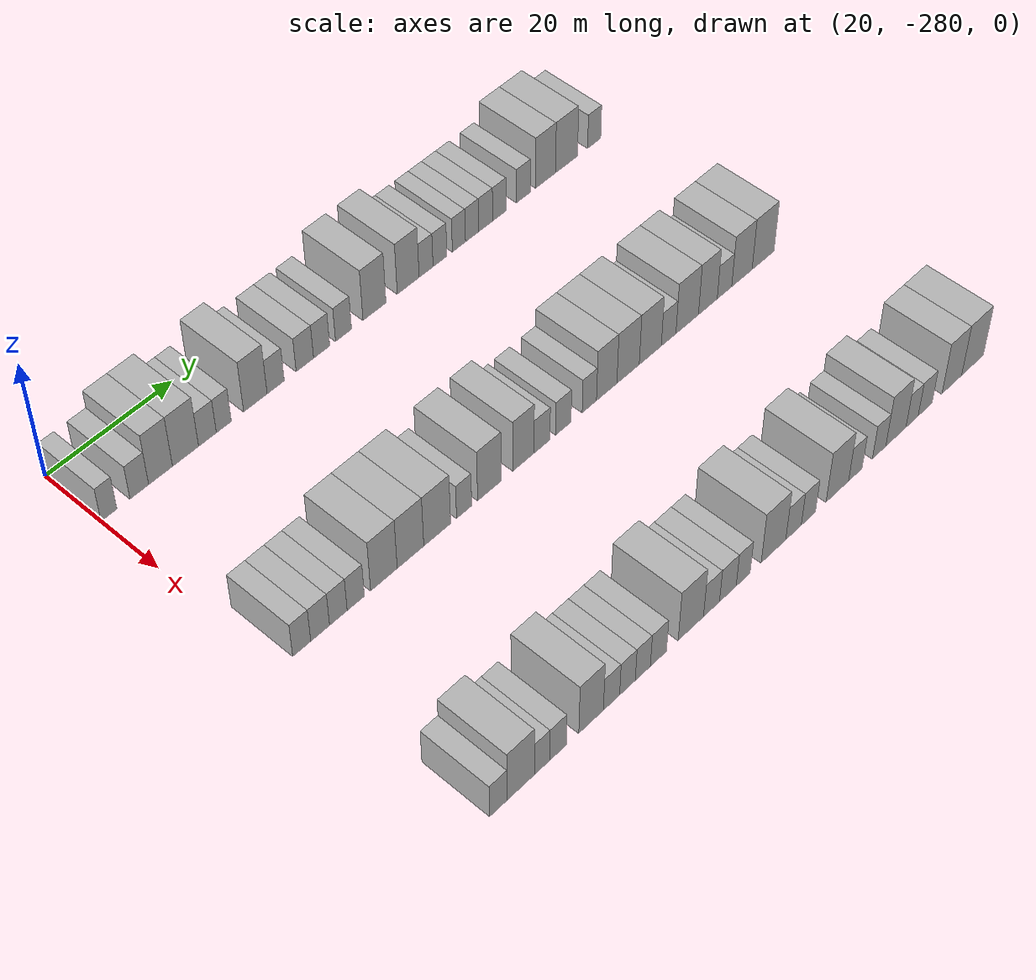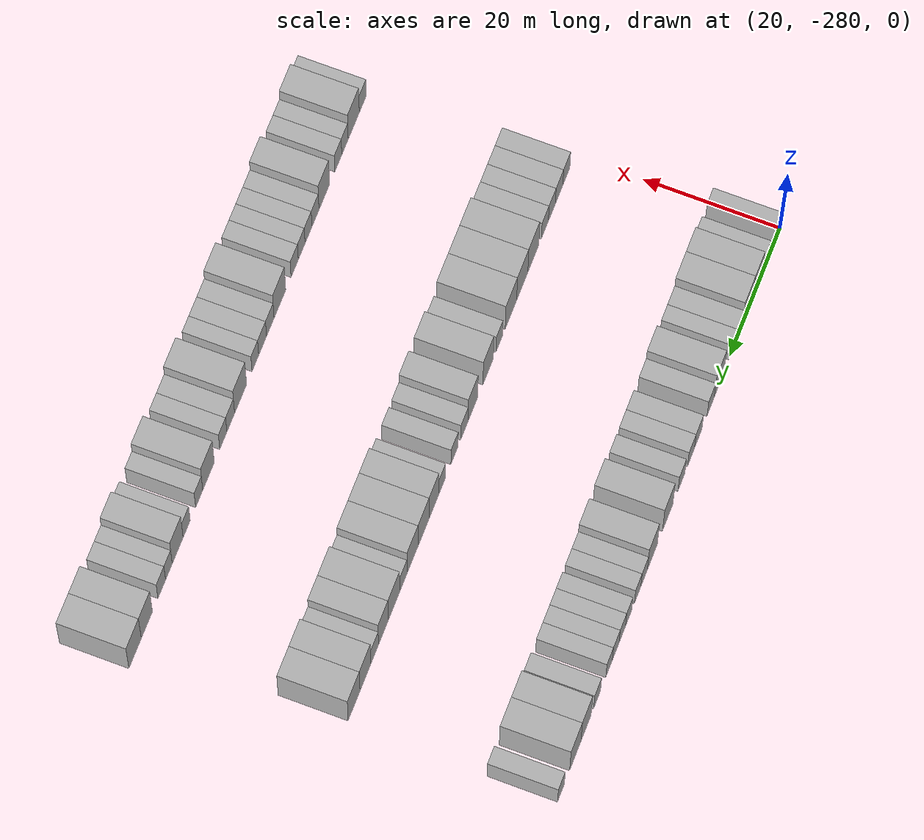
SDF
<sdf version="1.6">
 <world name="default">
  <model name="building_1">
   <static>1</static>
   <pose>25.0000 -278.7778 0 0.000000 0.000000 0.000000</pose>
   <link name="link">
    <pose>0 0 3.00 0 0 0</pose>
    <collision name="collision"><geometry><box><size>10.0000 2.4443 6.0000</size></box></geometry></collision>
    <visual name="visual">
     <cast_shadows>0</cast_shadows>
     <geometry><box><size>10.0000 2.4443 6.0000</size></box></geometry>
     <material>
      <script>
       <uri>model://HANNAS_wall/materials/scripts</uri>
       <uri>model://HANNAS_wall/materials/textures</uri>
       <name>vrc/HANNAS_wall</name>
      </script>
     </material>
    </visual>
   </link>
  </model>
  <model name="building_2">
   <static>1</static>
   <pose>25.0000 -274.1004 0 0.000000 0.000000 0.000000</pose>
   <link name="link">
    <pose>0 0 3.00 0 0 0</pose>
    <collision name="collision"><geometry><box><size>10.0000 2.9106 6.0000</size></box></geometry></collision>
    <visual name="visual">
     <cast_shadows>0</cast_shadows>
     <geometry><box><size>10.0000 2.9106 6.0000</size></box></geometry>
     <material>
      <script>
       <uri>model://HANNAS_wall/materials/scripts</uri>
       <uri>model://HANNAS_wall/materials/textures</uri>
       <name>vrc/HANNAS_wall</name>
      </script>
     </material>
    </visual>
   </link>
  </model>
  <model name="building_3">
   <static>1</static>
   <pose>25.0000 -270.7684 0 0.000000 0.000000 0.000000</pose>
   <link name="link">
    <pose>0 0 4.50 0 0 0</pose>
    <collision name="collision"><geometry><box><size>10.0000 3.7533 9.0000</size></box></geometry></collision>
    <visual name="visual">
     <cast_shadows>0</cast_shadows>
     <geometry><box><size>10.0000 3.7533 9.0000</size></box></geometry>
     <material>
      <script>
       <uri>model://HANNAS_wall/materials/scripts</uri>
       <uri>model://HANNAS_wall/materials/textures</uri>
       <name>vrc/HANNAS_wall</name>
      </script>
     </material>
    </visual>
   </link>
  </model>
  <model name="building_4">
   <static>1</static>
   <pose>25.0000 -266.8182 0 0.000000 0.000000 0.000000</pose>
   <link name="link">
    <pose>0 0 4.50 0 0 0</pose>
    <collision name="collision"><geometry><box><size>10.0000 4.1469 9.0000</size></box></geometry></collision>
    <visual name="visual">
     <cast_shadows>0</cast_shadows>
     <geometry><box><size>10.0000 4.1469 9.0000</size></box></geometry>
     <material>
      <script>
       <uri>model://HANNAS_wall/materials/scripts</uri>
       <uri>model://HANNAS_wall/materials/textures</uri>
       <name>vrc/HANNAS_wall</name>
      </script>
     </material>
    </visual>
   </link>
  </model>
  <model name="building_5">
   <static>1</static>
   <pose>25.0000 -263.3149 0 0.000000 0.000000 0.000000</pose>
   <link name="link">
    <pose>0 0 3.00 0 0 0</pose>
    <collision name="collision"><geometry><box><size>10.0000 2.8598 6.0000</size></box></geometry></collision>
    <visual name="visual">
     <cast_shadows>0</cast_shadows>
     <geometry><box><size>10.0000 2.8598 6.0000</size></box></geometry>
     <material>
      <script>
       <uri>model://HANNAS_wall/materials/scripts</uri>
       <uri>model://HANNAS_wall/materials/textures</uri>
       <name>vrc/HANNAS_wall</name>
      </script>
     </material>
    </visual>
   </link>
  </model>
  <model name="building_6">
   <static>1</static>
   <pose>25.0000 -260.6631 0 0.000000 0.000000 0.000000</pose>
   <link name="link">
    <pose>0 0 3.00 0 0 0</pose>
    <collision name="collision"><geometry><box><size>10.0000 2.4438 6.0000</size></box></geometry></collision>
    <visual name="visual">
     <cast_shadows>0</cast_shadows>
     <geometry><box><size>10.0000 2.4438 6.0000</size></box></geometry>
     <material>
      <script>
       <uri>model://HANNAS_wall/materials/scripts</uri>
       <uri>model://HANNAS_wall/materials/textures</uri>
       <name>vrc/HANNAS_wall</name>
      </script>
     </material>
    </visual>
   </link>
  </model>
  <model name="building_7">
   <static>1</static>
   <pose>25.0000 -255.4971 0 0.000000 0.000000 0.000000</pose>
   <link name="link">
    <pose>0 0 4.50 0 0 0</pose>
    <collision name="collision"><geometry><box><size>10.0000 3.8881 9.0000</size></box></geometry></collision>
    <visual name="visual">
     <cast_shadows>0</cast_shadows>
     <geometry><box><size>10.0000 3.8881 9.0000</size></box></geometry>
     <material>
      <script>
       <uri>model://HANNAS_wall/materials/scripts</uri>
       <uri>model://HANNAS_wall/materials/textures</uri>
       <name>vrc/HANNAS_wall</name>
      </script>
     </material>
    </visual>
   </link>
  </model>
  <model name="building_8">
   <static>1</static>
   <pose>25.0000 -252.1289 0 0.000000 0.000000 0.000000</pose>
   <link name="link">
    <pose>0 0 3.00 0 0 0</pose>
    <collision name="collision"><geometry><box><size>10.0000 2.8483 6.0000</size></box></geometry></collision>
    <visual name="visual">
     <cast_shadows>0</cast_shadows>
     <geometry><box><size>10.0000 2.8483 6.0000</size></box></geometry>
     <material>
      <script>
       <uri>model://HANNAS_wall/materials/scripts</uri>
       <uri>model://HANNAS_wall/materials/textures</uri>
       <name>vrc/HANNAS_wall</name>
      </script>
     </material>
    </visual>
   </link>
  </model>
  <model name="building_9">
   <static>1</static>
   <pose>25.0000 -247.2244 0 0.000000 0.000000 0.000000</pose>
   <link name="link">
    <pose>0 0 3.00 0 0 0</pose>
    <collision name="collision"><geometry><box><size>10.0000 2.9608 6.0000</size></box></geometry></collision>
    <visual name="visual">
     <cast_shadows>0</cast_shadows>
     <geometry><box><size>10.0000 2.9608 6.0000</size></box></geometry>
     <material>
      <script>
       <uri>model://HANNAS_wall/materials/scripts</uri>
       <uri>model://HANNAS_wall/materials/textures</uri>
       <name>vrc/HANNAS_wall</name>
      </script>
     </material>
    </visual>
   </link>
  </model>
  <model name="building_10">
   <static>1</static>
   <pose>25.0000 -244.3663 0 0.000000 0.000000 0.000000</pose>
   <link name="link">
    <pose>0 0 3.00 0 0 0</pose>
    <collision name="collision"><geometry><box><size>10.0000 2.7552 6.0000</size></box></geometry></collision>
    <visual name="visual">
     <cast_shadows>0</cast_shadows>
     <geometry><box><size>10.0000 2.7552 6.0000</size></box></geometry>
     <material>
      <script>
       <uri>model://HANNAS_wall/materials/scripts</uri>
       <uri>model://HANNAS_wall/materials/textures</uri>
       <name>vrc/HANNAS_wall</name>
      </script>
     </material>
    </visual>
   </link>
  </model>
  <model name="building_11">
   <static>1</static>
   <pose>25.0000 -240.6060 0 0.000000 0.000000 0.000000</pose>
   <link name="link">
    <pose>0 0 3.00 0 0 0</pose>
    <collision name="collision"><geometry><box><size>10.0000 2.7654 6.0000</size></box></geometry></collision>
    <visual name="visual">
     <cast_shadows>0</cast_shadows>
     <geometry><box><size>10.0000 2.7654 6.0000</size></box></geometry>
     <material>
      <script>
       <uri>model://HANNAS_wall/materials/scripts</uri>
       <uri>model://HANNAS_wall/materials/textures</uri>
       <name>vrc/HANNAS_wall</name>
      </script>
     </material>
    </visual>
   </link>
  </model>
  <model name="building_12">
   <static>1</static>
   <pose>25.0000 -235.1955 0 0.000000 0.000000 0.000000</pose>
   <link name="link">
    <pose>0 0 4.50 0 0 0</pose>
    <collision name="collision"><geometry><box><size>10.0000 4.0555 9.0000</size></box></geometry></collision>
    <visual name="visual">
     <cast_shadows>0</cast_shadows>
     <geometry><box><size>10.0000 4.0555 9.0000</size></box></geometry>
     <material>
      <script>
       <uri>model://HANNAS_wall/materials/scripts</uri>
       <uri>model://HANNAS_wall/materials/textures</uri>
       <name>vrc/HANNAS_wall</name>
      </script>
     </material>
    </visual>
   </link>
  </model>
  <model name="building_13">
   <static>1</static>
   <pose>25.0000 -229.2049 0 0.000000 0.000000 0.000000</pose>
   <link name="link">
    <pose>0 0 4.50 0 0 0</pose>
    <collision name="collision"><geometry><box><size>10.0000 3.9257 9.0000</size></box></geometry></collision>
    <visual name="visual">
     <cast_shadows>0</cast_shadows>
     <geometry><box><size>10.0000 3.9257 9.0000</size></box></geometry>
     <material>
      <script>
       <uri>model://HANNAS_wall/materials/scripts</uri>
       <uri>model://HANNAS_wall/materials/textures</uri>
       <name>vrc/HANNAS_wall</name>
      </script>
     </material>
    </visual>
   </link>
  </model>
  <model name="building_14">
   <static>1</static>
   <pose>25.0000 -225.9789 0 0.000000 0.000000 0.000000</pose>
   <link name="link">
    <pose>0 0 3.00 0 0 0</pose>
    <collision name="collision"><geometry><box><size>10.0000 2.5264 6.0000</size></box></geometry></collision>
    <visual name="visual">
     <cast_shadows>0</cast_shadows>
     <geometry><box><size>10.0000 2.5264 6.0000</size></box></geometry>
     <material>
      <script>
       <uri>model://HANNAS_wall/materials/scripts</uri>
       <uri>model://HANNAS_wall/materials/textures</uri>
       <name>vrc/HANNAS_wall</name>
      </script>
     </material>
    </visual>
   </link>
  </model>
  <model name="building_15">
   <static>1</static>
   <pose>25.0000 -223.4510 0 0.000000 0.000000 0.000000</pose>
   <link name="link">
    <pose>0 0 3.00 0 0 0</pose>
    <collision name="collision"><geometry><box><size>10.0000 2.5294 6.0000</size></box></geometry></collision>
    <visual name="visual">
     <cast_shadows>0</cast_shadows>
     <geometry><box><size>10.0000 2.5294 6.0000</size></box></geometry>
     <material>
      <script>
       <uri>model://HANNAS_wall/materials/scripts</uri>
       <uri>model://HANNAS_wall/materials/textures</uri>
       <name>vrc/HANNAS_wall</name>
      </script>
     </material>
    </visual>
   </link>
  </model>
  <model name="building_16">
   <static>1</static>
   <pose>25.0000 -219.9777 0 0.000000 0.000000 0.000000</pose>
   <link name="link">
    <pose>0 0 3.00 0 0 0</pose>
    <collision name="collision"><geometry><box><size>10.0000 2.4171 6.0000</size></box></geometry></collision>
    <visual name="visual">
     <cast_shadows>0</cast_shadows>
     <geometry><box><size>10.0000 2.4171 6.0000</size></box></geometry>
     <material>
      <script>
       <uri>model://HANNAS_wall/materials/scripts</uri>
       <uri>model://HANNAS_wall/materials/textures</uri>
       <name>vrc/HANNAS_wall</name>
      </script>
     </material>
    </visual>
   </link>
  </model>
  <model name="building_17">
   <static>1</static>
   <pose>25.0000 -217.5321 0 0.000000 0.000000 0.000000</pose>
   <link name="link">
    <pose>0 0 3.00 0 0 0</pose>
    <collision name="collision"><geometry><box><size>10.0000 2.4741 6.0000</size></box></geometry></collision>
    <visual name="visual">
     <cast_shadows>0</cast_shadows>
     <geometry><box><size>10.0000 2.4741 6.0000</size></box></geometry>
     <material>
      <script>
       <uri>model://HANNAS_wall/materials/scripts</uri>
       <uri>model://HANNAS_wall/materials/textures</uri>
       <name>vrc/HANNAS_wall</name>
      </script>
     </material>
    </visual>
   </link>
  </model>
  <model name="building_18">
   <static>1</static>
   <pose>25.0000 -214.9892 0 0.000000 0.000000 0.000000</pose>
   <link name="link">
    <pose>0 0 3.00 0 0 0</pose>
    <collision name="collision"><geometry><box><size>10.0000 2.6118 6.0000</size></box></geometry></collision>
    <visual name="visual">
     <cast_shadows>0</cast_shadows>
     <geometry><box><size>10.0000 2.6118 6.0000</size></box></geometry>
     <material>
      <script>
       <uri>model://HANNAS_wall/materials/scripts</uri>
       <uri>model://HANNAS_wall/materials/textures</uri>
       <name>vrc/HANNAS_wall</name>
      </script>
     </material>
    </visual>
   </link>
  </model>
  <model name="building_19">
   <static>1</static>
   <pose>25.0000 -212.4268 0 0.000000 0.000000 0.000000</pose>
   <link name="link">
    <pose>0 0 3.00 0 0 0</pose>
    <collision name="collision"><geometry><box><size>10.0000 2.5130 6.0000</size></box></geometry></collision>
    <visual name="visual">
     <cast_shadows>0</cast_shadows>
     <geometry><box><size>10.0000 2.5130 6.0000</size></box></geometry>
     <material>
      <script>
       <uri>model://HANNAS_wall/materials/scripts</uri>
       <uri>model://HANNAS_wall/materials/textures</uri>
       <name>vrc/HANNAS_wall</name>
      </script>
     </material>
    </visual>
   </link>
  </model>
  <model name="building_20">
   <static>1</static>
   <pose>25.0000 -207.8493 0 0.000000 0.000000 0.000000</pose>
   <link name="link">
    <pose>0 0 3.00 0 0 0</pose>
    <collision name="collision"><geometry><box><size>10.0000 2.6420 6.0000</size></box></geometry></collision>
    <visual name="visual">
     <cast_shadows>0</cast_shadows>
     <geometry><box><size>10.0000 2.6420 6.0000</size></box></geometry>
     <material>
      <script>
       <uri>model://HANNAS_wall/materials/scripts</uri>
       <uri>model://HANNAS_wall/materials/textures</uri>
       <name>vrc/HANNAS_wall</name>
      </script>
     </material>
    </visual>
   </link>
  </model>
  <model name="building_21">
   <static>1</static>
   <pose>25.0000 -203.5837 0 0.000000 0.000000 0.000000</pose>
   <link name="link">
    <pose>0 0 4.50 0 0 0</pose>
    <collision name="collision"><geometry><box><size>10.0000 3.8892 9.0000</size></box></geometry></collision>
    <visual name="visual">
     <cast_shadows>0</cast_shadows>
     <geometry><box><size>10.0000 3.8892 9.0000</size></box></geometry>
     <material>
      <script>
       <uri>model://HANNAS_wall/materials/scripts</uri>
       <uri>model://HANNAS_wall/materials/textures</uri>
       <name>vrc/HANNAS_wall</name>
      </script>
     </material>
    </visual>
   </link>
  </model>
  <model name="building_22">
   <static>1</static>
   <pose>25.0000 -199.4928 0 0.000000 0.000000 0.000000</pose>
   <link name="link">
    <pose>0 0 4.50 0 0 0</pose>
    <collision name="collision"><geometry><box><size>10.0000 4.2924 9.0000</size></box></geometry></collision>
    <visual name="visual">
     <cast_shadows>0</cast_shadows>
     <geometry><box><size>10.0000 4.2924 9.0000</size></box></geometry>
     <material>
      <script>
       <uri>model://HANNAS_wall/materials/scripts</uri>
       <uri>model://HANNAS_wall/materials/textures</uri>
       <name>vrc/HANNAS_wall</name>
      </script>
     </material>
    </visual>
   </link>
  </model>
  <model name="building_23">
   <static>1</static>
   <pose>25.0000 -194.0434 0 0.000000 0.000000 0.000000</pose>
   <link name="link">
    <pose>0 0 3.00 0 0 0</pose>
    <collision name="collision"><geometry><box><size>10.0000 2.6064 6.0000</size></box></geometry></collision>
    <visual name="visual">
     <cast_shadows>0</cast_shadows>
     <geometry><box><size>10.0000 2.6064 6.0000</size></box></geometry>
     <material>
      <script>
       <uri>model://HANNAS_wall/materials/scripts</uri>
       <uri>model://HANNAS_wall/materials/textures</uri>
       <name>vrc/HANNAS_wall</name>
      </script>
     </material>
    </visual>
   </link>
  </model>
  <model name="building_132">
   <static>1</static>
   <pose>55.0000 -276.6072 0 0.000000 0.000000 0.000000</pose>
   <link name="link">
    <pose>0 0 3.00 0 0 0</pose>
    <collision name="collision"><geometry><box><size>10.0000 2.7856 6.0000</size></box></geometry></collision>
    <visual name="visual">
     <cast_shadows>0</cast_shadows>
     <geometry><box><size>10.0000 2.7856 6.0000</size></box></geometry>
     <material>
      <script>
       <uri>model://HANNAS_wall/materials/scripts</uri>
       <uri>model://HANNAS_wall/materials/textures</uri>
       <name>vrc/HANNAS_wall</name>
      </script>
     </material>
    </visual>
   </link>
  </model>
  <model name="building_133">
   <static>1</static>
   <pose>55.0000 -273.7545 0 0.000000 0.000000 0.000000</pose>
   <link name="link">
    <pose>0 0 3.00 0 0 0</pose>
    <collision name="collision"><geometry><box><size>10.0000 2.9197 6.0000</size></box></geometry></collision>
    <visual name="visual">
     <cast_shadows>0</cast_shadows>
     <geometry><box><size>10.0000 2.9197 6.0000</size></box></geometry>
     <material>
      <script>
       <uri>model://HANNAS_wall/materials/scripts</uri>
       <uri>model://HANNAS_wall/materials/textures</uri>
       <name>vrc/HANNAS_wall</name>
      </script>
     </material>
    </visual>
   </link>
  </model>
  <model name="building_134">
   <static>1</static>
   <pose>55.0000 -270.9124 0 0.000000 0.000000 0.000000</pose>
   <link name="link">
    <pose>0 0 3.00 0 0 0</pose>
    <collision name="collision"><geometry><box><size>10.0000 2.7644 6.0000</size></box></geometry></collision>
    <visual name="visual">
     <cast_shadows>0</cast_shadows>
     <geometry><box><size>10.0000 2.7644 6.0000</size></box></geometry>
     <material>
      <script>
       <uri>model://HANNAS_wall/materials/scripts</uri>
       <uri>model://HANNAS_wall/materials/textures</uri>
       <name>vrc/HANNAS_wall</name>
      </script>
     </material>
    </visual>
   </link>
  </model>
  <model name="building_135">
   <static>1</static>
   <pose>55.0000 -268.1673 0 0.000000 0.000000 0.000000</pose>
   <link name="link">
    <pose>0 0 3.00 0 0 0</pose>
    <collision name="collision"><geometry><box><size>10.0000 2.7258 6.0000</size></box></geometry></collision>
    <visual name="visual">
     <cast_shadows>0</cast_shadows>
     <geometry><box><size>10.0000 2.7258 6.0000</size></box></geometry>
     <material>
      <script>
       <uri>model://HANNAS_wall/materials/scripts</uri>
       <uri>model://HANNAS_wall/materials/textures</uri>
       <name>vrc/HANNAS_wall</name>
      </script>
     </material>
    </visual>
   </link>
  </model>
  <model name="building_136">
   <static>1</static>
   <pose>55.0000 -263.6624 0 0.000000 0.000000 0.000000</pose>
   <link name="link">
    <pose>0 0 4.50 0 0 0</pose>
    <collision name="collision"><geometry><box><size>10.0000 4.2839 9.0000</size></box></geometry></collision>
    <visual name="visual">
     <cast_shadows>0</cast_shadows>
     <geometry><box><size>10.0000 4.2839 9.0000</size></box></geometry>
     <material>
      <script>
       <uri>model://HANNAS_wall/materials/scripts</uri>
       <uri>model://HANNAS_wall/materials/textures</uri>
       <name>vrc/HANNAS_wall</name>
      </script>
     </material>
    </visual>
   </link>
  </model>
  <model name="building_137">
   <static>1</static>
   <pose>55.0000 -259.3485 0 0.000000 0.000000 0.000000</pose>
   <link name="link">
    <pose>0 0 4.50 0 0 0</pose>
    <collision name="collision"><geometry><box><size>10.0000 4.3440 9.0000</size></box></geometry></collision>
    <visual name="visual">
     <cast_shadows>0</cast_shadows>
     <geometry><box><size>10.0000 4.3440 9.0000</size></box></geometry>
     <material>
      <script>
       <uri>model://HANNAS_wall/materials/scripts</uri>
       <uri>model://HANNAS_wall/materials/textures</uri>
       <name>vrc/HANNAS_wall</name>
      </script>
     </material>
    </visual>
   </link>
  </model>
  <model name="building_138">
   <static>1</static>
   <pose>55.0000 -254.9563 0 0.000000 0.000000 0.000000</pose>
   <link name="link">
    <pose>0 0 4.50 0 0 0</pose>
    <collision name="collision"><geometry><box><size>10.0000 4.4405 9.0000</size></box></geometry></collision>
    <visual name="visual">
     <cast_shadows>0</cast_shadows>
     <geometry><box><size>10.0000 4.4405 9.0000</size></box></geometry>
     <material>
      <script>
       <uri>model://HANNAS_wall/materials/scripts</uri>
       <uri>model://HANNAS_wall/materials/textures</uri>
       <name>vrc/HANNAS_wall</name>
      </script>
     </material>
    </visual>
   </link>
  </model>
  <model name="building_139">
   <static>1</static>
   <pose>55.0000 -250.4614 0 0.000000 0.000000 0.000000</pose>
   <link name="link">
    <pose>0 0 3.00 0 0 0</pose>
    <collision name="collision"><geometry><box><size>10.0000 2.5492 6.0000</size></box></geometry></collision>
    <visual name="visual">
     <cast_shadows>0</cast_shadows>
     <geometry><box><size>10.0000 2.5492 6.0000</size></box></geometry>
     <material>
      <script>
       <uri>model://HANNAS_wall/materials/scripts</uri>
       <uri>model://HANNAS_wall/materials/textures</uri>
       <name>vrc/HANNAS_wall</name>
      </script>
     </material>
    </visual>
   </link>
  </model>
  <model name="building_140">
   <static>1</static>
   <pose>55.0000 -246.1655 0 0.000000 0.000000 0.000000</pose>
   <link name="link">
    <pose>0 0 4.50 0 0 0</pose>
    <collision name="collision"><geometry><box><size>10.0000 4.0425 9.0000</size></box></geometry></collision>
    <visual name="visual">
     <cast_shadows>0</cast_shadows>
     <geometry><box><size>10.0000 4.0425 9.0000</size></box></geometry>
     <material>
      <script>
       <uri>model://HANNAS_wall/materials/scripts</uri>
       <uri>model://HANNAS_wall/materials/textures</uri>
       <name>vrc/HANNAS_wall</name>
      </script>
     </material>
    </visual>
   </link>
  </model>
  <model name="building_141">
   <static>1</static>
   <pose>55.0000 -240.2925 0 0.000000 0.000000 0.000000</pose>
   <link name="link">
    <pose>0 0 4.50 0 0 0</pose>
    <collision name="collision"><geometry><box><size>10.0000 3.7036 9.0000</size></box></geometry></collision>
    <visual name="visual">
     <cast_shadows>0</cast_shadows>
     <geometry><box><size>10.0000 3.7036 9.0000</size></box></geometry>
     <material>
      <script>
       <uri>model://HANNAS_wall/materials/scripts</uri>
       <uri>model://HANNAS_wall/materials/textures</uri>
       <name>vrc/HANNAS_wall</name>
      </script>
     </material>
    </visual>
   </link>
  </model>
  <model name="building_142">
   <static>1</static>
   <pose>55.0000 -237.0460 0 0.000000 0.000000 0.000000</pose>
   <link name="link">
    <pose>0 0 3.00 0 0 0</pose>
    <collision name="collision"><geometry><box><size>10.0000 2.7894 6.0000</size></box></geometry></collision>
    <visual name="visual">
     <cast_shadows>0</cast_shadows>
     <geometry><box><size>10.0000 2.7894 6.0000</size></box></geometry>
     <material>
      <script>
       <uri>model://HANNAS_wall/materials/scripts</uri>
       <uri>model://HANNAS_wall/materials/textures</uri>
       <name>vrc/HANNAS_wall</name>
      </script>
     </material>
    </visual>
   </link>
  </model>
  <model name="building_143">
   <static>1</static>
   <pose>55.0000 -233.2779 0 0.000000 0.000000 0.000000</pose>
   <link name="link">
    <pose>0 0 3.00 0 0 0</pose>
    <collision name="collision"><geometry><box><size>10.0000 2.7468 6.0000</size></box></geometry></collision>
    <visual name="visual">
     <cast_shadows>0</cast_shadows>
     <geometry><box><size>10.0000 2.7468 6.0000</size></box></geometry>
     <material>
      <script>
       <uri>model://HANNAS_wall/materials/scripts</uri>
       <uri>model://HANNAS_wall/materials/textures</uri>
       <name>vrc/HANNAS_wall</name>
      </script>
     </material>
    </visual>
   </link>
  </model>
  <model name="building_144">
   <static>1</static>
   <pose>55.0000 -228.6148 0 0.000000 0.000000 0.000000</pose>
   <link name="link">
    <pose>0 0 3.00 0 0 0</pose>
    <collision name="collision"><geometry><box><size>10.0000 2.5794 6.0000</size></box></geometry></collision>
    <visual name="visual">
     <cast_shadows>0</cast_shadows>
     <geometry><box><size>10.0000 2.5794 6.0000</size></box></geometry>
     <material>
      <script>
       <uri>model://HANNAS_wall/materials/scripts</uri>
       <uri>model://HANNAS_wall/materials/textures</uri>
       <name>vrc/HANNAS_wall</name>
      </script>
     </material>
    </visual>
   </link>
  </model>
  <model name="building_145">
   <static>1</static>
   <pose>55.0000 -225.4587 0 0.000000 0.000000 0.000000</pose>
   <link name="link">
    <pose>0 0 4.50 0 0 0</pose>
    <collision name="collision"><geometry><box><size>10.0000 3.7328 9.0000</size></box></geometry></collision>
    <visual name="visual">
     <cast_shadows>0</cast_shadows>
     <geometry><box><size>10.0000 3.7328 9.0000</size></box></geometry>
     <material>
      <script>
       <uri>model://HANNAS_wall/materials/scripts</uri>
       <uri>model://HANNAS_wall/materials/textures</uri>
       <name>vrc/HANNAS_wall</name>
      </script>
     </material>
    </visual>
   </link>
  </model>
  <model name="building_146">
   <static>1</static>
   <pose>55.0000 -221.5199 0 0.000000 0.000000 0.000000</pose>
   <link name="link">
    <pose>0 0 4.50 0 0 0</pose>
    <collision name="collision"><geometry><box><size>10.0000 4.1448 9.0000</size></box></geometry></collision>
    <visual name="visual">
     <cast_shadows>0</cast_shadows>
     <geometry><box><size>10.0000 4.1448 9.0000</size></box></geometry>
     <material>
      <script>
       <uri>model://HANNAS_wall/materials/scripts</uri>
       <uri>model://HANNAS_wall/materials/textures</uri>
       <name>vrc/HANNAS_wall</name>
      </script>
     </material>
    </visual>
   </link>
  </model>
  <model name="building_147">
   <static>1</static>
   <pose>55.0000 -217.3819 0 0.000000 0.000000 0.000000</pose>
   <link name="link">
    <pose>0 0 4.50 0 0 0</pose>
    <collision name="collision"><geometry><box><size>10.0000 4.1313 9.0000</size></box></geometry></collision>
    <visual name="visual">
     <cast_shadows>0</cast_shadows>
     <geometry><box><size>10.0000 4.1313 9.0000</size></box></geometry>
     <material>
      <script>
       <uri>model://HANNAS_wall/materials/scripts</uri>
       <uri>model://HANNAS_wall/materials/textures</uri>
       <name>vrc/HANNAS_wall</name>
      </script>
     </material>
    </visual>
   </link>
  </model>
  <model name="building_148">
   <static>1</static>
   <pose>55.0000 -213.9294 0 0.000000 0.000000 0.000000</pose>
   <link name="link">
    <pose>0 0 3.00 0 0 0</pose>
    <collision name="collision"><geometry><box><size>10.0000 2.7735 6.0000</size></box></geometry></collision>
    <visual name="visual">
     <cast_shadows>0</cast_shadows>
     <geometry><box><size>10.0000 2.7735 6.0000</size></box></geometry>
     <material>
      <script>
       <uri>model://HANNAS_wall/materials/scripts</uri>
       <uri>model://HANNAS_wall/materials/textures</uri>
       <name>vrc/HANNAS_wall</name>
      </script>
     </material>
    </visual>
   </link>
  </model>
  <model name="building_149">
   <static>1</static>
   <pose>55.0000 -210.3822 0 0.000000 0.000000 0.000000</pose>
   <link name="link">
    <pose>0 0 4.50 0 0 0</pose>
    <collision name="collision"><geometry><box><size>10.0000 4.3210 9.0000</size></box></geometry></collision>
    <visual name="visual">
     <cast_shadows>0</cast_shadows>
     <geometry><box><size>10.0000 4.3210 9.0000</size></box></geometry>
     <material>
      <script>
       <uri>model://HANNAS_wall/materials/scripts</uri>
       <uri>model://HANNAS_wall/materials/textures</uri>
       <name>vrc/HANNAS_wall</name>
      </script>
     </material>
    </visual>
   </link>
  </model>
  <model name="building_150">
   <static>1</static>
   <pose>55.0000 -206.3999 0 0.000000 0.000000 0.000000</pose>
   <link name="link">
    <pose>0 0 4.50 0 0 0</pose>
    <collision name="collision"><geometry><box><size>10.0000 3.6436 9.0000</size></box></geometry></collision>
    <visual name="visual">
     <cast_shadows>0</cast_shadows>
     <geometry><box><size>10.0000 3.6436 9.0000</size></box></geometry>
     <material>
      <script>
       <uri>model://HANNAS_wall/materials/scripts</uri>
       <uri>model://HANNAS_wall/materials/textures</uri>
       <name>vrc/HANNAS_wall</name>
      </script>
     </material>
    </visual>
   </link>
  </model>
  <model name="building_151">
   <static>1</static>
   <pose>55.0000 -203.1589 0 0.000000 0.000000 0.000000</pose>
   <link name="link">
    <pose>0 0 3.00 0 0 0</pose>
    <collision name="collision"><geometry><box><size>10.0000 2.8384 6.0000</size></box></geometry></collision>
    <visual name="visual">
     <cast_shadows>0</cast_shadows>
     <geometry><box><size>10.0000 2.8384 6.0000</size></box></geometry>
     <material>
      <script>
       <uri>model://HANNAS_wall/materials/scripts</uri>
       <uri>model://HANNAS_wall/materials/textures</uri>
       <name>vrc/HANNAS_wall</name>
      </script>
     </material>
    </visual>
   </link>
  </model>
  <model name="building_152">
   <static>1</static>
   <pose>55.0000 -199.7154 0 0.000000 0.000000 0.000000</pose>
   <link name="link">
    <pose>0 0 4.50 0 0 0</pose>
    <collision name="collision"><geometry><box><size>10.0000 4.0485 9.0000</size></box></geometry></collision>
    <visual name="visual">
     <cast_shadows>0</cast_shadows>
     <geometry><box><size>10.0000 4.0485 9.0000</size></box></geometry>
     <material>
      <script>
       <uri>model://HANNAS_wall/materials/scripts</uri>
       <uri>model://HANNAS_wall/materials/textures</uri>
       <name>vrc/HANNAS_wall</name>
      </script>
     </material>
    </visual>
   </link>
  </model>
  <model name="building_153">
   <static>1</static>
   <pose>55.0000 -195.4940 0 0.000000 0.000000 0.000000</pose>
   <link name="link">
    <pose>0 0 4.50 0 0 0</pose>
    <collision name="collision"><geometry><box><size>10.0000 4.3943 9.0000</size></box></geometry></collision>
    <visual name="visual">
     <cast_shadows>0</cast_shadows>
     <geometry><box><size>10.0000 4.3943 9.0000</size></box></geometry>
     <material>
      <script>
       <uri>model://HANNAS_wall/materials/scripts</uri>
       <uri>model://HANNAS_wall/materials/textures</uri>
       <name>vrc/HANNAS_wall</name>
      </script>
     </material>
    </visual>
   </link>
  </model>
  <model name="building_279">
   <static>1</static>
   <pose>85.0000 -276.6482 0 0.000000 0.000000 0.000000</pose>
   <link name="link">
    <pose>0 0 3.00 0 0 0</pose>
    <collision name="collision"><geometry><box><size>10.0000 2.7035 6.0000</size></box></geometry></collision>
    <visual name="visual">
     <cast_shadows>0</cast_shadows>
     <geometry><box><size>10.0000 2.7035 6.0000</size></box></geometry>
     <material>
      <script>
       <uri>model://HANNAS_wall/materials/scripts</uri>
       <uri>model://HANNAS_wall/materials/textures</uri>
       <name>vrc/HANNAS_wall</name>
      </script>
     </material>
    </visual>
   </link>
  </model>
  <model name="building_280">
   <static>1</static>
   <pose>85.0000 -273.1687 0 0.000000 0.000000 0.000000</pose>
   <link name="link">
    <pose>0 0 4.50 0 0 0</pose>
    <collision name="collision"><geometry><box><size>10.0000 4.2556 9.0000</size></box></geometry></collision>
    <visual name="visual">
     <cast_shadows>0</cast_shadows>
     <geometry><box><size>10.0000 4.2556 9.0000</size></box></geometry>
     <material>
      <script>
       <uri>model://HANNAS_wall/materials/scripts</uri>
       <uri>model://HANNAS_wall/materials/textures</uri>
       <name>vrc/HANNAS_wall</name>
      </script>
     </material>
    </visual>
   </link>
  </model>
  <model name="building_281">
   <static>1</static>
   <pose>85.0000 -269.8141 0 0.000000 0.000000 0.000000</pose>
   <link name="link">
    <pose>0 0 3.00 0 0 0</pose>
    <collision name="collision"><geometry><box><size>10.0000 2.4535 6.0000</size></box></geometry></collision>
    <visual name="visual">
     <cast_shadows>0</cast_shadows>
     <geometry><box><size>10.0000 2.4535 6.0000</size></box></geometry>
     <material>
      <script>
       <uri>model://HANNAS_wall/materials/scripts</uri>
       <uri>model://HANNAS_wall/materials/textures</uri>
       <name>vrc/HANNAS_wall</name>
      </script>
     </material>
    </visual>
   </link>
  </model>
  <model name="building_282">
   <static>1</static>
   <pose>85.0000 -267.2636 0 0.000000 0.000000 0.000000</pose>
   <link name="link">
    <pose>0 0 3.00 0 0 0</pose>
    <collision name="collision"><geometry><box><size>10.0000 2.6474 6.0000</size></box></geometry></collision>
    <visual name="visual">
     <cast_shadows>0</cast_shadows>
     <geometry><box><size>10.0000 2.6474 6.0000</size></box></geometry>
     <material>
      <script>
       <uri>model://HANNAS_wall/materials/scripts</uri>
       <uri>model://HANNAS_wall/materials/textures</uri>
       <name>vrc/HANNAS_wall</name>
      </script>
     </material>
    </visual>
   </link>
  </model>
  <model name="building_283">
   <static>1</static>
   <pose>85.0000 -261.9351 0 0.000000 0.000000 0.000000</pose>
   <link name="link">
    <pose>0 0 4.50 0 0 0</pose>
    <collision name="collision"><geometry><box><size>10.0000 4.0097 9.0000</size></box></geometry></collision>
    <visual name="visual">
     <cast_shadows>0</cast_shadows>
     <geometry><box><size>10.0000 4.0097 9.0000</size></box></geometry>
     <material>
      <script>
       <uri>model://HANNAS_wall/materials/scripts</uri>
       <uri>model://HANNAS_wall/materials/textures</uri>
       <name>vrc/HANNAS_wall</name>
      </script>
     </material>
    </visual>
   </link>
  </model>
  <model name="building_284">
   <static>1</static>
   <pose>85.0000 -258.5888 0 0.000000 0.000000 0.000000</pose>
   <link name="link">
    <pose>0 0 3.00 0 0 0</pose>
    <collision name="collision"><geometry><box><size>10.0000 2.6829 6.0000</size></box></geometry></collision>
    <visual name="visual">
     <cast_shadows>0</cast_shadows>
     <geometry><box><size>10.0000 2.6829 6.0000</size></box></geometry>
     <material>
      <script>
       <uri>model://HANNAS_wall/materials/scripts</uri>
       <uri>model://HANNAS_wall/materials/textures</uri>
       <name>vrc/HANNAS_wall</name>
      </script>
     </material>
    </visual>
   </link>
  </model>
  <model name="building_285">
   <static>1</static>
   <pose>85.0000 -255.9421 0 0.000000 0.000000 0.000000</pose>
   <link name="link">
    <pose>0 0 3.00 0 0 0</pose>
    <collision name="collision"><geometry><box><size>10.0000 2.6104 6.0000</size></box></geometry></collision>
    <visual name="visual">
     <cast_shadows>0</cast_shadows>
     <geometry><box><size>10.0000 2.6104 6.0000</size></box></geometry>
     <material>
      <script>
       <uri>model://HANNAS_wall/materials/scripts</uri>
       <uri>model://HANNAS_wall/materials/textures</uri>
       <name>vrc/HANNAS_wall</name>
      </script>
     </material>
    </visual>
   </link>
  </model>
  <model name="building_286">
   <static>1</static>
   <pose>85.0000 -253.3669 0 0.000000 0.000000 0.000000</pose>
   <link name="link">
    <pose>0 0 3.00 0 0 0</pose>
    <collision name="collision"><geometry><box><size>10.0000 2.5399 6.0000</size></box></geometry></collision>
    <visual name="visual">
     <cast_shadows>0</cast_shadows>
     <geometry><box><size>10.0000 2.5399 6.0000</size></box></geometry>
     <material>
      <script>
       <uri>model://HANNAS_wall/materials/scripts</uri>
       <uri>model://HANNAS_wall/materials/textures</uri>
       <name>vrc/HANNAS_wall</name>
      </script>
     </material>
    </visual>
   </link>
  </model>
  <model name="building_287">
   <static>1</static>
   <pose>85.0000 -250.7278 0 0.000000 0.000000 0.000000</pose>
   <link name="link">
    <pose>0 0 3.00 0 0 0</pose>
    <collision name="collision"><geometry><box><size>10.0000 2.7384 6.0000</size></box></geometry></collision>
    <visual name="visual">
     <cast_shadows>0</cast_shadows>
     <geometry><box><size>10.0000 2.7384 6.0000</size></box></geometry>
     <material>
      <script>
       <uri>model://HANNAS_wall/materials/scripts</uri>
       <uri>model://HANNAS_wall/materials/textures</uri>
       <name>vrc/HANNAS_wall</name>
      </script>
     </material>
    </visual>
   </link>
  </model>
  <model name="building_288">
   <static>1</static>
   <pose>85.0000 -245.1659 0 0.000000 0.000000 0.000000</pose>
   <link name="link">
    <pose>0 0 4.50 0 0 0</pose>
    <collision name="collision"><geometry><box><size>10.0000 4.3855 9.0000</size></box></geometry></collision>
    <visual name="visual">
     <cast_shadows>0</cast_shadows>
     <geometry><box><size>10.0000 4.3855 9.0000</size></box></geometry>
     <material>
      <script>
       <uri>model://HANNAS_wall/materials/scripts</uri>
       <uri>model://HANNAS_wall/materials/textures</uri>
       <name>vrc/HANNAS_wall</name>
      </script>
     </material>
    </visual>
   </link>
  </model>
  <model name="building_289">
   <static>1</static>
   <pose>85.0000 -241.5735 0 0.000000 0.000000 0.000000</pose>
   <link name="link">
    <pose>0 0 3.00 0 0 0</pose>
    <collision name="collision"><geometry><box><size>10.0000 2.7993 6.0000</size></box></geometry></collision>
    <visual name="visual">
     <cast_shadows>0</cast_shadows>
     <geometry><box><size>10.0000 2.7993 6.0000</size></box></geometry>
     <material>
      <script>
       <uri>model://HANNAS_wall/materials/scripts</uri>
       <uri>model://HANNAS_wall/materials/textures</uri>
       <name>vrc/HANNAS_wall</name>
      </script>
     </material>
    </visual>
   </link>
  </model>
  <model name="building_290">
   <static>1</static>
   <pose>85.0000 -238.6977 0 0.000000 0.000000 0.000000</pose>
   <link name="link">
    <pose>0 0 3.00 0 0 0</pose>
    <collision name="collision"><geometry><box><size>10.0000 2.9524 6.0000</size></box></geometry></collision>
    <visual name="visual">
     <cast_shadows>0</cast_shadows>
     <geometry><box><size>10.0000 2.9524 6.0000</size></box></geometry>
     <material>
      <script>
       <uri>model://HANNAS_wall/materials/scripts</uri>
       <uri>model://HANNAS_wall/materials/textures</uri>
       <name>vrc/HANNAS_wall</name>
      </script>
     </material>
    </visual>
   </link>
  </model>
  <model name="building_291">
   <static>1</static>
   <pose>85.0000 -235.9807 0 0.000000 0.000000 0.000000</pose>
   <link name="link">
    <pose>0 0 3.00 0 0 0</pose>
    <collision name="collision"><geometry><box><size>10.0000 2.4814 6.0000</size></box></geometry></collision>
    <visual name="visual">
     <cast_shadows>0</cast_shadows>
     <geometry><box><size>10.0000 2.4814 6.0000</size></box></geometry>
     <material>
      <script>
       <uri>model://HANNAS_wall/materials/scripts</uri>
       <uri>model://HANNAS_wall/materials/textures</uri>
       <name>vrc/HANNAS_wall</name>
      </script>
     </material>
    </visual>
   </link>
  </model>
  <model name="building_292">
   <static>1</static>
   <pose>85.0000 -230.5046 0 0.000000 0.000000 0.000000</pose>
   <link name="link">
    <pose>0 0 4.50 0 0 0</pose>
    <collision name="collision"><geometry><box><size>10.0000 4.4708 9.0000</size></box></geometry></collision>
    <visual name="visual">
     <cast_shadows>0</cast_shadows>
     <geometry><box><size>10.0000 4.4708 9.0000</size></box></geometry>
     <material>
      <script>
       <uri>model://HANNAS_wall/materials/scripts</uri>
       <uri>model://HANNAS_wall/materials/textures</uri>
       <name>vrc/HANNAS_wall</name>
      </script>
     </material>
    </visual>
   </link>
  </model>
  <model name="building_293">
   <static>1</static>
   <pose>85.0000 -226.8380 0 0.000000 0.000000 0.000000</pose>
   <link name="link">
    <pose>0 0 3.00 0 0 0</pose>
    <collision name="collision"><geometry><box><size>10.0000 2.8625 6.0000</size></box></geometry></collision>
    <visual name="visual">
     <cast_shadows>0</cast_shadows>
     <geometry><box><size>10.0000 2.8625 6.0000</size></box></geometry>
     <material>
      <script>
       <uri>model://HANNAS_wall/materials/scripts</uri>
       <uri>model://HANNAS_wall/materials/textures</uri>
       <name>vrc/HANNAS_wall</name>
      </script>
     </material>
    </visual>
   </link>
  </model>
  <model name="building_294">
   <static>1</static>
   <pose>85.0000 -224.0861 0 0.000000 0.000000 0.000000</pose>
   <link name="link">
    <pose>0 0 3.00 0 0 0</pose>
    <collision name="collision"><geometry><box><size>10.0000 2.6414 6.0000</size></box></geometry></collision>
    <visual name="visual">
     <cast_shadows>0</cast_shadows>
     <geometry><box><size>10.0000 2.6414 6.0000</size></box></geometry>
     <material>
      <script>
       <uri>model://HANNAS_wall/materials/scripts</uri>
       <uri>model://HANNAS_wall/materials/textures</uri>
       <name>vrc/HANNAS_wall</name>
      </script>
     </material>
    </visual>
   </link>
  </model>
  <model name="building_295">
   <static>1</static>
   <pose>85.0000 -218.6361 0 0.000000 0.000000 0.000000</pose>
   <link name="link">
    <pose>0 0 4.50 0 0 0</pose>
    <collision name="collision"><geometry><box><size>10.0000 4.2586 9.0000</size></box></geometry></collision>
    <visual name="visual">
     <cast_shadows>0</cast_shadows>
     <geometry><box><size>10.0000 4.2586 9.0000</size></box></geometry>
     <material>
      <script>
       <uri>model://HANNAS_wall/materials/scripts</uri>
       <uri>model://HANNAS_wall/materials/textures</uri>
       <name>vrc/HANNAS_wall</name>
      </script>
     </material>
    </visual>
   </link>
  </model>
  <model name="building_296">
   <static>1</static>
   <pose>85.0000 -215.2111 0 0.000000 0.000000 0.000000</pose>
   <link name="link">
    <pose>0 0 3.00 0 0 0</pose>
    <collision name="collision"><geometry><box><size>10.0000 2.5915 6.0000</size></box></geometry></collision>
    <visual name="visual">
     <cast_shadows>0</cast_shadows>
     <geometry><box><size>10.0000 2.5915 6.0000</size></box></geometry>
     <material>
      <script>
       <uri>model://HANNAS_wall/materials/scripts</uri>
       <uri>model://HANNAS_wall/materials/textures</uri>
       <name>vrc/HANNAS_wall</name>
      </script>
     </material>
    </visual>
   </link>
  </model>
  <model name="building_297">
   <static>1</static>
   <pose>85.0000 -210.6157 0 0.000000 0.000000 0.000000</pose>
   <link name="link">
    <pose>0 0 3.00 0 0 0</pose>
    <collision name="collision"><geometry><box><size>10.0000 2.5992 6.0000</size></box></geometry></collision>
    <visual name="visual">
     <cast_shadows>0</cast_shadows>
     <geometry><box><size>10.0000 2.5992 6.0000</size></box></geometry>
     <material>
      <script>
       <uri>model://HANNAS_wall/materials/scripts</uri>
       <uri>model://HANNAS_wall/materials/textures</uri>
       <name>vrc/HANNAS_wall</name>
      </script>
     </material>
    </visual>
   </link>
  </model>
  <model name="building_298">
   <static>1</static>
   <pose>85.0000 -207.3357 0 0.000000 0.000000 0.000000</pose>
   <link name="link">
    <pose>0 0 4.50 0 0 0</pose>
    <collision name="collision"><geometry><box><size>10.0000 3.9607 9.0000</size></box></geometry></collision>
    <visual name="visual">
     <cast_shadows>0</cast_shadows>
     <geometry><box><size>10.0000 3.9607 9.0000</size></box></geometry>
     <material>
      <script>
       <uri>model://HANNAS_wall/materials/scripts</uri>
       <uri>model://HANNAS_wall/materials/textures</uri>
       <name>vrc/HANNAS_wall</name>
      </script>
     </material>
    </visual>
   </link>
  </model>
  <model name="building_299">
   <static>1</static>
   <pose>85.0000 -204.1403 0 0.000000 0.000000 0.000000</pose>
   <link name="link">
    <pose>0 0 3.00 0 0 0</pose>
    <collision name="collision"><geometry><box><size>10.0000 2.4302 6.0000</size></box></geometry></collision>
    <visual name="visual">
     <cast_shadows>0</cast_shadows>
     <geometry><box><size>10.0000 2.4302 6.0000</size></box></geometry>
     <material>
      <script>
       <uri>model://HANNAS_wall/materials/scripts</uri>
       <uri>model://HANNAS_wall/materials/textures</uri>
       <name>vrc/HANNAS_wall</name>
      </script>
     </material>
    </visual>
   </link>
  </model>
  <model name="building_300">
   <static>1</static>
   <pose>85.0000 -201.5346 0 0.000000 0.000000 0.000000</pose>
   <link name="link">
    <pose>0 0 3.00 0 0 0</pose>
    <collision name="collision"><geometry><box><size>10.0000 2.7811 6.0000</size></box></geometry></collision>
    <visual name="visual">
     <cast_shadows>0</cast_shadows>
     <geometry><box><size>10.0000 2.7811 6.0000</size></box></geometry>
     <material>
      <script>
       <uri>model://HANNAS_wall/materials/scripts</uri>
       <uri>model://HANNAS_wall/materials/textures</uri>
       <name>vrc/HANNAS_wall</name>
      </script>
     </material>
    </visual>
   </link>
  </model>
  <model name="building_301">
   <static>1</static>
   <pose>85.0000 -196.1318 0 0.000000 0.000000 0.000000</pose>
   <link name="link">
    <pose>0 0 4.50 0 0 0</pose>
    <collision name="collision"><geometry><box><size>10.0000 4.0246 9.0000</size></box></geometry></collision>
    <visual name="visual">
     <cast_shadows>0</cast_shadows>
     <geometry><box><size>10.0000 4.0246 9.0000</size></box></geometry>
     <material>
      <script>
       <uri>model://HANNAS_wall/materials/scripts</uri>
       <uri>model://HANNAS_wall/materials/textures</uri>
       <name>vrc/HANNAS_wall</name>
      </script>
     </material>
    </visual>
   </link>
  </model>
  <model name="building_302">
   <static>1</static>
   <pose>85.0000 -191.8826 0 0.000000 0.000000 0.000000</pose>
   <link name="link">
    <pose>0 0 4.50 0 0 0</pose>
    <collision name="collision"><geometry><box><size>10.0000 4.4737 9.0000</size></box></geometry></collision>
    <visual name="visual">
     <cast_shadows>0</cast_shadows>
     <geometry><box><size>10.0000 4.4737 9.0000</size></box></geometry>
     <material>
      <script>
       <uri>model://HANNAS_wall/materials/scripts</uri>
       <uri>model://HANNAS_wall/materials/textures</uri>
       <name>vrc/HANNAS_wall</name>
      </script>
     </material>
    </visual>
   </link>
  </model>
 </world>
</sdf>
